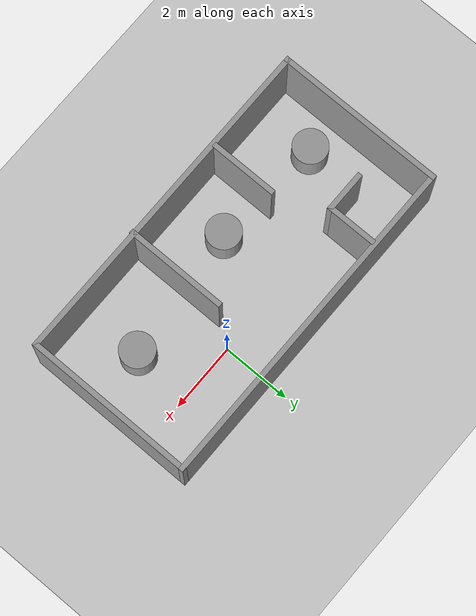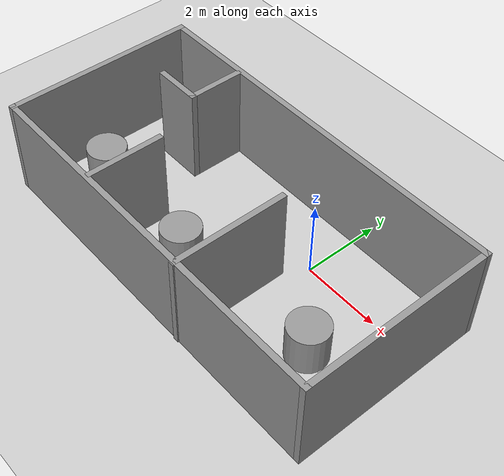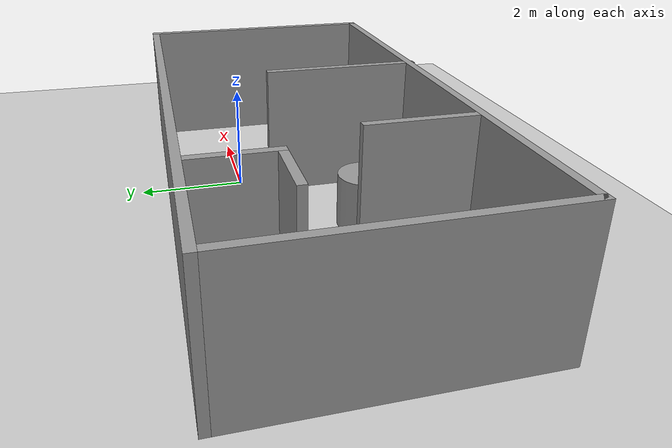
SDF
<sdf version="1.7">
 <world name="default">
  <light name="sun" type="directional">
   <pose>0 0 10 0 -0 0</pose>
   <diffuse>0.8 0.8 0.8 1</diffuse>
   <specular>0.2 0.2 0.2 1</specular>
   <attenuation>
    <range>1000</range>
    <constant>0.9</constant>
    <linear>0.01</linear>
    <quadratic>0.001</quadratic>
   </attenuation>
   <direction>-0.5 0.1 -0.9</direction>
   <spot><inner_angle>0</inner_angle><outer_angle>0</outer_angle><falloff>0</falloff></spot>
  </light>
  <model name="ground_plane">
   <static>1</static>
   <link name="link">
    <collision name="collision">
     <geometry><plane><normal>0 0 1</normal><size>100 100</size></plane></geometry>
     <surface><friction><ode><mu>100</mu><mu2>50</mu2></ode></friction></surface>
    </collision>
    <visual name="visual">
     <cast_shadows>0</cast_shadows>
     <geometry><plane><normal>0 0 1</normal><size>100 100</size></plane></geometry>
     <material>
      <script><uri>file://media/materials/scripts/gazebo.material</uri><name>Gazebo/Grey</name></script>
     </material>
    </visual>
   </link>
  </model>
  <gravity>0 0 -9.8</gravity>
  <magnetic_field>6e-06 2.3e-05 -4.2e-05</magnetic_field>
  <atmosphere type="adiabatic"/>
  <physics type="ode">
   <max_step_size>0.001</max_step_size>
   <real_time_factor>1</real_time_factor>
   <real_time_update_rate>1000</real_time_update_rate>
  </physics>
  <scene><ambient>0.4 0.4 0.4 1</ambient><background>0.7 0.7 0.7 1</background><shadows>1</shadows></scene>
  <audio><device>default</device></audio>
  <spherical_coordinates>
   <surface_model>EARTH_WGS84</surface_model>
   <latitude_deg>0</latitude_deg>
   <longitude_deg>0</longitude_deg>
   <elevation>0</elevation>
   <heading_deg>0</heading_deg>
  </spherical_coordinates>
  <model name="1">
   <pose>-1.55006 -0.141001 0 0 -0 0</pose>
   <link name="Wall_0">
    <collision name="Wall_0_Collision">
     <geometry><box><size>5 0.15 2.5</size></box></geometry>
     <pose>0 0 1.25 0 -0 0</pose>
    </collision>
    <visual name="Wall_0_Visual">
     <pose>0 0 1.25 0 -0 0</pose>
     <geometry><box><size>5 0.15 2.5</size></box></geometry>
     <material>
      <script><uri>file://media/materials/scripts/gazebo.material</uri><name>Gazebo/Grey</name></script>
      <ambient>1 1 1 1</ambient>
     </material>
     <meta><layer>0</layer></meta>
    </visual>
    <pose>-4.925 -0.872561 0 0 -0 -1.5708</pose>
   </link>
   <link name="Wall_1">
    <collision name="Wall_1_Collision">
     <geometry><box><size>10 0.15 2.5</size></box></geometry>
     <pose>0 0 1.25 0 -0 0</pose>
    </collision>
    <visual name="Wall_1_Visual">
     <pose>0 0 1.25 0 -0 0</pose>
     <geometry><box><size>10 0.15 2.5</size></box></geometry>
     <material>
      <script><uri>file://media/materials/scripts/gazebo.material</uri><name>Gazebo/Grey</name></script>
      <ambient>1 1 1 1</ambient>
     </material>
     <meta><layer>0</layer></meta>
    </visual>
    <pose>0 -3.29756 0 0 -0 0</pose>
   </link>
   <link name="Wall_10">
    <collision name="Wall_10_Collision">
     <geometry><box><size>2 0.15 2.5</size></box></geometry>
     <pose>0 0 1.25 0 -0 0</pose>
    </collision>
    <visual name="Wall_10_Visual">
     <pose>0 0 1.25 0 -0 0</pose>
     <geometry><box><size>2 0.15 2.5</size></box></geometry>
     <material>
      <script><uri>file://media/materials/scripts/gazebo.material</uri><name>Gazebo/Grey</name></script>
      <ambient>1 1 1 1</ambient>
     </material>
     <meta><layer>0</layer></meta>
    </visual>
    <pose>-1.95519 -2.27694 0 0 -0 -1.5708</pose>
   </link>
   <link name="Wall_2">
    <collision name="Wall_2_Collision">
     <geometry><box><size>5 0.15 2.5</size></box></geometry>
     <pose>0 0 1.25 0 -0 0</pose>
    </collision>
    <visual name="Wall_2_Visual">
     <pose>0 0 1.25 0 -0 0</pose>
     <geometry><box><size>5 0.15 2.5</size></box></geometry>
     <material>
      <script><uri>file://media/materials/scripts/gazebo.material</uri><name>Gazebo/Grey</name></script>
      <ambient>1 1 1 1</ambient>
     </material>
     <meta><layer>0</layer></meta>
    </visual>
    <pose>4.925 -0.872561 0 0 -0 1.5708</pose>
   </link>
   <link name="Wall_3">
    <collision name="Wall_3_Collision">
     <geometry><box><size>10 0.15 2.5</size></box></geometry>
     <pose>0 0 1.25 0 -0 0</pose>
    </collision>
    <visual name="Wall_3_Visual">
     <pose>0 0 1.25 0 -0 0</pose>
     <geometry><box><size>10 0.15 2.5</size></box></geometry>
     <material>
      <script><uri>file://media/materials/scripts/gazebo.material</uri><name>Gazebo/Grey</name></script>
      <ambient>1 1 1 1</ambient>
     </material>
     <meta><layer>0</layer></meta>
    </visual>
    <pose>0 1.55244 0 0 -0 3.14159</pose>
   </link>
   <link name="Wall_5">
    <collision name="Wall_5_Collision">
     <geometry><box><size>1.5 0.15 2.5</size></box></geometry>
     <pose>0 0 1.25 0 -0 0</pose>
    </collision>
    <visual name="Wall_5_Visual">
     <pose>0 0 1.25 0 -0 0</pose>
     <geometry><box><size>1.5 0.15 2.5</size></box></geometry>
     <material>
      <script><uri>file://media/materials/scripts/gazebo.material</uri><name>Gazebo/Grey</name></script>
      <ambient>1 1 1 1</ambient>
     </material>
     <meta><layer>0</layer></meta>
    </visual>
    <pose>-2.60232 0.771467 0 0 -0 -1.5708</pose>
   </link>
   <link name="Wall_6">
    <collision name="Wall_6_Collision">
     <geometry><box><size>1.25 0.15 2.5</size></box></geometry>
     <pose>0 0 1.25 0 -0 0</pose>
    </collision>
    <visual name="Wall_6_Visual">
     <pose>0 0 1.25 0 -0 0</pose>
     <geometry><box><size>1.25 0.15 2.5</size></box></geometry>
     <material>
      <script><uri>file://media/materials/scripts/gazebo.material</uri><name>Gazebo/Grey</name></script>
      <ambient>1 1 1 1</ambient>
     </material>
     <meta><layer>0</layer></meta>
    </visual>
    <pose>-3.15232 0.096467 0 0 -0 3.14159</pose>
   </link>
   <link name="Wall_8">
    <collision name="Wall_8_Collision">
     <geometry><box><size>3 0.15 2.5</size></box></geometry>
     <pose>0 0 1.25 0 -0 0</pose>
    </collision>
    <visual name="Wall_8_Visual">
     <pose>0 0 1.25 0 -0 0</pose>
     <geometry><box><size>3 0.15 2.5</size></box></geometry>
     <material>
      <script><uri>file://media/materials/scripts/gazebo.material</uri><name>Gazebo/Grey</name></script>
      <ambient>1 1 1 1</ambient>
     </material>
     <meta><layer>0</layer></meta>
    </visual>
    <pose>1.15804 -1.90244 0 0 -0 -1.5708</pose>
   </link>
   <static>1</static>
  </model>
  <model name="unit_cylinder">
   <pose>1.65504 -1.64197 0.499997 3e-06 4e-06 -0</pose>
   <link name="link">
    <inertial>
     <mass>1</mass>
     <inertia><ixx>0.145833</ixx><ixy>0</ixy><ixz>0</ixz><iyy>0.145833</iyy><iyz>0</iyz><izz>0.125</izz></inertia>
    </inertial>
    <collision name="collision">
     <geometry><cylinder><radius>0.5</radius><length>1</length></cylinder></geometry>
    </collision>
    <visual name="visual">
     <geometry><cylinder><radius>0.5</radius><length>1</length></cylinder></geometry>
     <material>
      <script><name>Gazebo/Grey</name><uri>file://media/materials/scripts/gazebo.material</uri></script>
     </material>
    </visual>
   </link>
  </model>
  <model name="unit_cylinder_0">
   <pose>-2.18735 -1.97764 0.499993 -3e-06 -4e-06 -0</pose>
   <link name="link">
    <inertial>
     <mass>1</mass>
     <inertia><ixx>0.145833</ixx><ixy>0</ixy><ixz>0</ixz><iyy>0.145833</iyy><iyz>0</iyz><izz>0.125</izz></inertia>
    </inertial>
    <collision name="collision">
     <geometry><cylinder><radius>0.5</radius><length>1</length></cylinder></geometry>
    </collision>
    <visual name="visual">
     <geometry><cylinder><radius>0.5</radius><length>1</length></cylinder></geometry>
     <material>
      <script><name>Gazebo/Grey</name><uri>file://media/materials/scripts/gazebo.material</uri></script>
     </material>
    </visual>
   </link>
  </model>
  <model name="unit_cylinder_1">
   <pose>-5.43642 -1.7327 0.499997 3e-06 4e-06 -0</pose>
   <link name="link">
    <inertial>
     <mass>1</mass>
     <inertia><ixx>0.145833</ixx><ixy>0</ixy><ixz>0</ixz><iyy>0.145833</iyy><iyz>0</iyz><izz>0.125</izz></inertia>
    </inertial>
    <collision name="collision">
     <geometry><cylinder><radius>0.5</radius><length>1</length></cylinder></geometry>
    </collision>
    <visual name="visual">
     <geometry><cylinder><radius>0.5</radius><length>1</length></cylinder></geometry>
     <material>
      <script><name>Gazebo/Grey</name><uri>file://media/materials/scripts/gazebo.material</uri></script>
     </material>
    </visual>
   </link>
  </model>
 </world>
</sdf>
